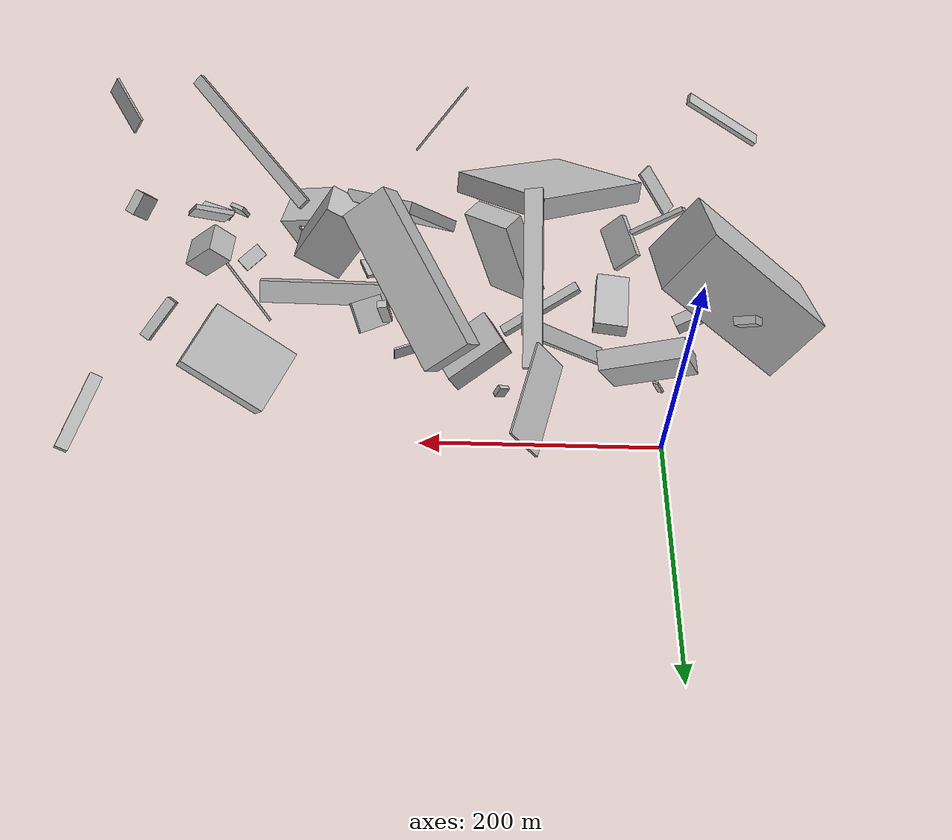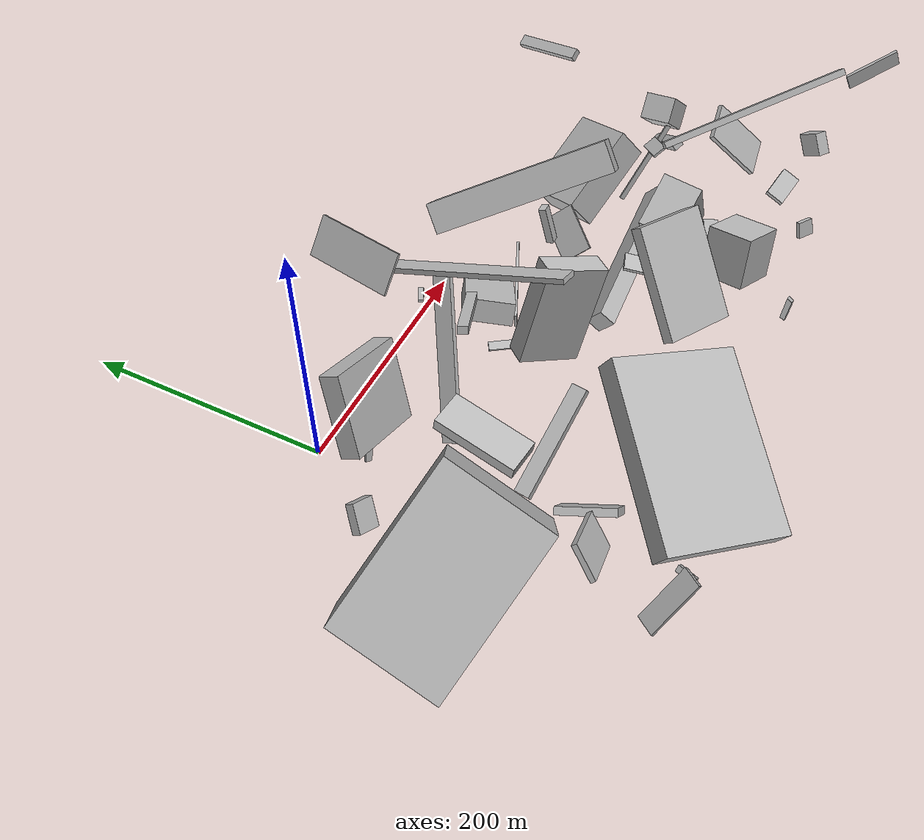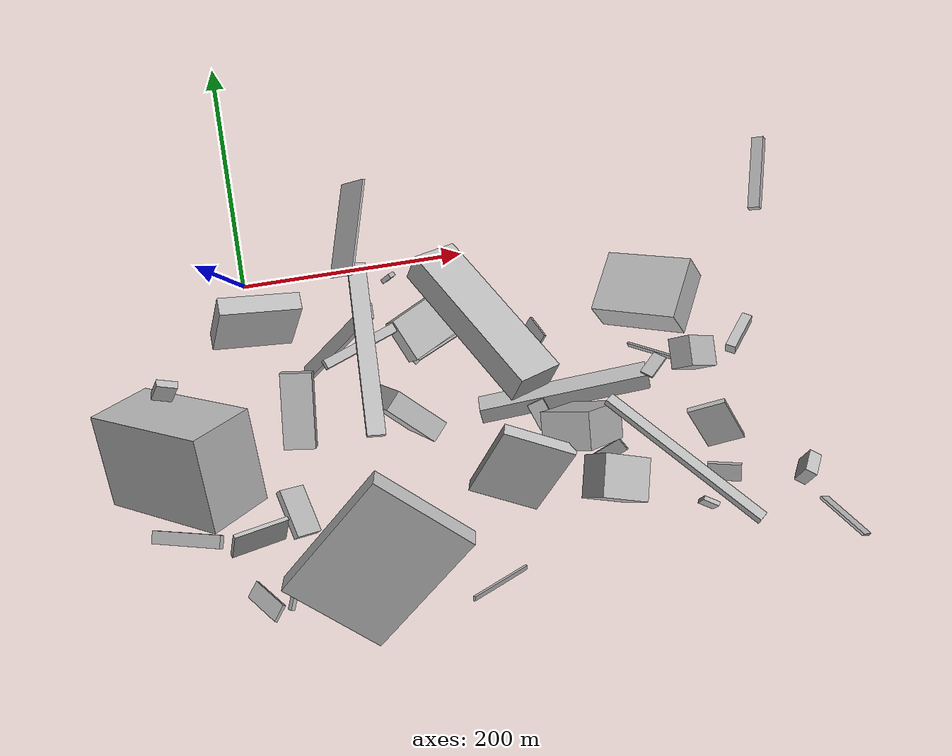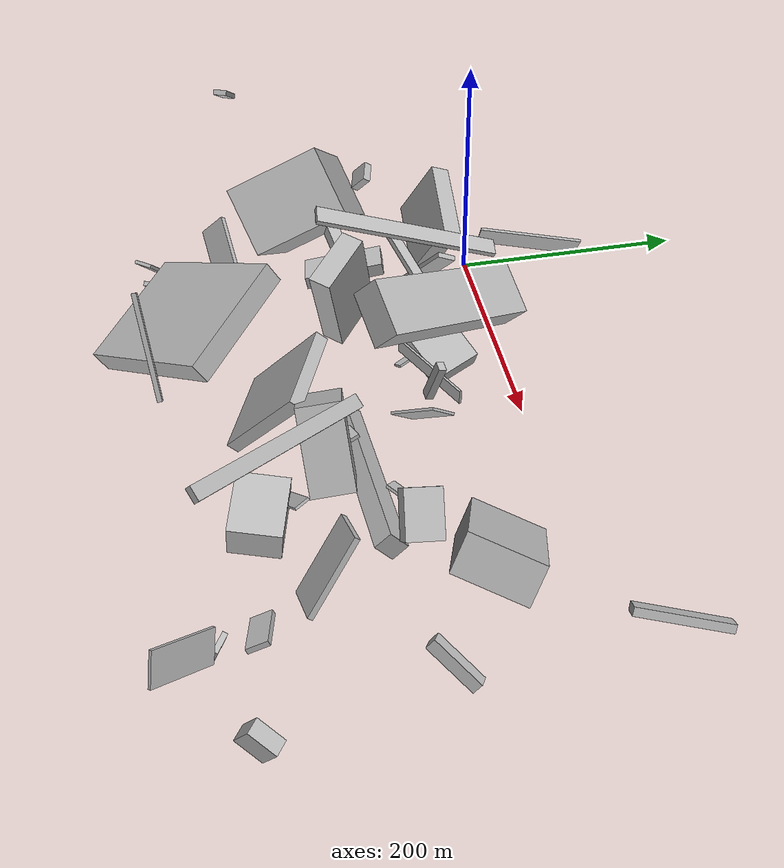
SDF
<sdf version="1.6">
 <world name="default">
  <model name="building_5">
   <static>0</static>
   <pose>102.16153685850966 -73.33031954508343 85.49092715441036 0.43963756912852114 0.028290553676220527 1.9585653919376407</pose>
   <link name="link">
    <gravity>0</gravity>
    <pose>0 0 3.0 0 0 0</pose>
    <collision name="collision"><geometry><box><size>8 70 6</size></box></geometry></collision>
    <visual name="visual">
     <cast_shadows>0</cast_shadows>
     <geometry><box><size>8 70 6</size></box></geometry>
     <material>
      <script>
       <uri>model://HANNAS_wall/materials/scripts</uri>
       <uri>model://HANNAS_wall/materials/textures</uri>
       <name>vrc/HANNAS_wall</name>
      </script>
     </material>
    </visual>
   </link>
  </model>
  <model name="building_7">
   <static>0</static>
   <pose>-19.292353680897072 -159.53463631597 79.0748970243742 2.529620187769243 -0.8031946919919525 -2.6791012494218247</pose>
   <link name="link">
    <gravity>0</gravity>
    <pose>0 0 65.0 0 0 0</pose>
    <collision name="collision"><geometry><box><size>63 87 130</size></box></geometry></collision>
    <visual name="visual">
     <cast_shadows>0</cast_shadows>
     <geometry><box><size>63 87 130</size></box></geometry>
     <material>
      <script>
       <uri>model://HANNAS_wall/materials/scripts</uri>
       <uri>model://HANNAS_wall/materials/textures</uri>
       <name>vrc/HANNAS_wall</name>
      </script>
     </material>
    </visual>
   </link>
  </model>
  <model name="building_10">
   <static>0</static>
   <pose>342.4192497505893 -201.32566527318764 151.62650027550703 2.263049715369004 0.2720535190863577 2.3129017693919165</pose>
   <link name="link">
    <gravity>0</gravity>
    <pose>0 0 5.0 0 0 0</pose>
    <collision name="collision"><geometry><box><size>150 5 10</size></box></geometry></collision>
    <visual name="visual">
     <cast_shadows>0</cast_shadows>
     <geometry><box><size>150 5 10</size></box></geometry>
     <material>
      <script>
       <uri>model://HANNAS_wall/materials/scripts</uri>
       <uri>model://HANNAS_wall/materials/textures</uri>
       <name>vrc/HANNAS_wall</name>
      </script>
     </material>
    </visual>
   </link>
  </model>
  <model name="building_12">
   <static>0</static>
   <pose>136.59331172341774 -214.9119745149422 77.0979892588978 -2.006695373787017 -0.3007476484331228 2.418565224094029</pose>
   <link name="link">
    <gravity>0</gravity>
    <pose>0 0 70.0 0 0 0</pose>
    <collision name="collision"><geometry><box><size>105 19 140</size></box></geometry></collision>
    <visual name="visual">
     <cast_shadows>0</cast_shadows>
     <geometry><box><size>105 19 140</size></box></geometry>
     <material>
      <script>
       <uri>model://HANNAS_wall/materials/scripts</uri>
       <uri>model://HANNAS_wall/materials/textures</uri>
       <name>vrc/HANNAS_wall</name>
      </script>
     </material>
    </visual>
   </link>
  </model>
  <model name="building_13">
   <static>0</static>
   <pose>383.7561574682753 -256.3732813748268 14.395179231091959 2.9109927980495627 1.1983539717498026 -2.3267588712815024</pose>
   <link name="link">
    <gravity>0</gravity>
    <pose>0 0 2.0 0 0 0</pose>
    <collision name="collision"><geometry><box><size>14 15 4</size></box></geometry></collision>
    <visual name="visual">
     <cast_shadows>0</cast_shadows>
     <geometry><box><size>14 15 4</size></box></geometry>
     <material>
      <script>
       <uri>model://HANNAS_wall/materials/scripts</uri>
       <uri>model://HANNAS_wall/materials/textures</uri>
       <name>vrc/HANNAS_wall</name>
      </script>
     </material>
    </visual>
   </link>
  </model>
  <model name="building_15">
   <static>0</static>
   <pose>110.54541779566739 -146.393947624754 149.61369321577354 2.5263513968655955 1.1439263130054422 -2.2353485971940237</pose>
   <link name="link">
    <gravity>0</gravity>
    <pose>0 0 75.0 0 0 0</pose>
    <collision name="collision"><geometry><box><size>4 15 150</size></box></geometry></collision>
    <visual name="visual">
     <cast_shadows>0</cast_shadows>
     <geometry><box><size>4 15 150</size></box></geometry>
     <material>
      <script>
       <uri>model://HANNAS_wall/materials/scripts</uri>
       <uri>model://HANNAS_wall/materials/textures</uri>
       <name>vrc/HANNAS_wall</name>
      </script>
     </material>
    </visual>
   </link>
  </model>
  <model name="building_16">
   <static>0</static>
   <pose>-6.408742971156322 -212.39102848943597 51.78708270991902 2.4960245818815125 0.5131706727605136 0.14620573823110036</pose>
   <link name="link">
    <gravity>0</gravity>
    <pose>0 0 14.0 0 0 0</pose>
    <collision name="collision"><geometry><box><size>51 4 28</size></box></geometry></collision>
    <visual name="visual">
     <cast_shadows>0</cast_shadows>
     <geometry><box><size>51 4 28</size></box></geometry>
     <material>
      <script>
       <uri>model://HANNAS_wall/materials/scripts</uri>
       <uri>model://HANNAS_wall/materials/textures</uri>
       <name>vrc/HANNAS_wall</name>
      </script>
     </material>
    </visual>
   </link>
  </model>
  <model name="building_18">
   <static>0</static>
   <pose>398.00636808115615 -219.3872669518585 43.05850663547555 -2.6220497054625818 -1.0770741973250373 -2.2253608676601924</pose>
   <link name="link">
    <gravity>0</gravity>
    <pose>0 0 8.0 0 0 0</pose>
    <collision name="collision"><geometry><box><size>4 29 16</size></box></geometry></collision>
    <visual name="visual">
     <cast_shadows>0</cast_shadows>
     <geometry><box><size>4 29 16</size></box></geometry>
     <material>
      <script>
       <uri>model://HANNAS_wall/materials/scripts</uri>
       <uri>model://HANNAS_wall/materials/textures</uri>
       <name>vrc/HANNAS_wall</name>
      </script>
     </material>
    </visual>
   </link>
  </model>
  <model name="building_20">
   <static>0</static>
   <pose>298.5751629795044 -236.48066500441684 42.72853106756688 -1.7176235595042786 0.3317109783652685 -0.28566057793081423</pose>
   <link name="link">
    <gravity>0</gravity>
    <pose>0 0 19.0 0 0 0</pose>
    <collision name="collision"><geometry><box><size>43 42 38</size></box></geometry></collision>
    <visual name="visual">
     <cast_shadows>0</cast_shadows>
     <geometry><box><size>43 42 38</size></box></geometry>
     <material>
      <script>
       <uri>model://HANNAS_wall/materials/scripts</uri>
       <uri>model://HANNAS_wall/materials/textures</uri>
       <name>vrc/HANNAS_wall</name>
      </script>
     </material>
    </visual>
   </link>
  </model>
  <model name="building_21">
   <static>0</static>
   <pose>222.2312464738095 -63.313495411220025 114.7806784540073 0.5618794824624866 0.818047730537645 -2.1668689970050625</pose>
   <link name="link">
    <gravity>0</gravity>
    <pose>0 0 20.5 0 0 0</pose>
    <collision name="collision"><geometry><box><size>24 141 41</size></box></geometry></collision>
    <visual name="visual">
     <cast_shadows>0</cast_shadows>
     <geometry><box><size>24 141 41</size></box></geometry>
     <material>
      <script>
       <uri>model://HANNAS_wall/materials/scripts</uri>
       <uri>model://HANNAS_wall/materials/textures</uri>
       <name>vrc/HANNAS_wall</name>
      </script>
     </material>
    </visual>
   </link>
  </model>
  <model name="building_25">
   <static>0</static>
   <pose>16.133647910264415 -30.01757500837323 63.80986110951927 -0.7192925158260081 1.0366642067744962 -2.2635756557562003</pose>
   <link name="link">
    <gravity>0</gravity>
    <pose>0 0 8.0 0 0 0</pose>
    <collision name="collision"><geometry><box><size>62 69 16</size></box></geometry></collision>
    <visual name="visual">
     <cast_shadows>0</cast_shadows>
     <geometry><box><size>62 69 16</size></box></geometry>
     <material>
      <script>
       <uri>model://HANNAS_wall/materials/scripts</uri>
       <uri>model://HANNAS_wall/materials/textures</uri>
       <name>vrc/HANNAS_wall</name>
      </script>
     </material>
    </visual>
   </link>
  </model>
  <model name="building_28">
   <static>0</static>
   <pose>270.5001070750448 -131.85133015586285 21.76227061102407 0.6835602619572649 -0.08956601987055944 0.05889522945132717</pose>
   <link name="link">
    <gravity>0</gravity>
    <pose>0 0 9.5 0 0 0</pose>
    <collision name="collision"><geometry><box><size>150 15 19</size></box></geometry></collision>
    <visual name="visual">
     <cast_shadows>0</cast_shadows>
     <geometry><box><size>150 15 19</size></box></geometry>
     <material>
      <script>
       <uri>model://HANNAS_wall/materials/scripts</uri>
       <uri>model://HANNAS_wall/materials/textures</uri>
       <name>vrc/HANNAS_wall</name>
      </script>
     </material>
    </visual>
   </link>
  </model>
  <model name="building_29">
   <static>0</static>
   <pose>8.46304671728738 -283.9750349331316 24.624359356678163 0.02753251506465785 0.8358519940491919 2.8130281463200957</pose>
   <link name="link">
    <gravity>0</gravity>
    <pose>0 0 2.0 0 0 0</pose>
    <collision name="collision"><geometry><box><size>5 15 4</size></box></geometry></collision>
    <visual name="visual">
     <cast_shadows>0</cast_shadows>
     <geometry><box><size>5 15 4</size></box></geometry>
     <material>
      <script>
       <uri>model://HANNAS_wall/materials/scripts</uri>
       <uri>model://HANNAS_wall/materials/textures</uri>
       <name>vrc/HANNAS_wall</name>
      </script>
     </material>
    </visual>
   </link>
  </model>
  <model name="building_30">
   <static>0</static>
   <pose>83.60708190739513 -67.0180814187151 53.94260650162122 -0.9491275082231776 0.41674464875791917 1.595987948968332</pose>
   <link name="link">
    <gravity>0</gravity>
    <pose>0 0 2.0 0 0 0</pose>
    <collision name="collision"><geometry><box><size>15 124 4</size></box></geometry></collision>
    <visual name="visual">
     <cast_shadows>0</cast_shadows>
     <geometry><box><size>15 124 4</size></box></geometry>
     <material>
      <script>
       <uri>model://HANNAS_wall/materials/scripts</uri>
       <uri>model://HANNAS_wall/materials/textures</uri>
       <name>vrc/HANNAS_wall</name>
      </script>
     </material>
    </visual>
   </link>
  </model>
  <model name="building_31">
   <static>0</static>
   <pose>375.2088240580995 -107.18686953541072 98.68116490143636 -1.4377472693771352 -0.7408997205310374 3.0047334513113664</pose>
   <link name="link">
    <gravity>0</gravity>
    <pose>0 0 12.5 0 0 0</pose>
    <collision name="collision"><geometry><box><size>33 21 25</size></box></geometry></collision>
    <visual name="visual">
     <cast_shadows>0</cast_shadows>
     <geometry><box><size>33 21 25</size></box></geometry>
     <material>
      <script>
       <uri>model://HANNAS_wall/materials/scripts</uri>
       <uri>model://HANNAS_wall/materials/textures</uri>
       <name>vrc/HANNAS_wall</name>
      </script>
     </material>
    </visual>
   </link>
  </model>
  <model name="building_32">
   <static>0</static>
   <pose>432.66303468823475 -106.60681756304183 26.013599985143813 2.540184309410349 -0.3957626245882051 -0.4992928094336515</pose>
   <link name="link">
    <gravity>0</gravity>
    <pose>0 0 4.5 0 0 0</pose>
    <collision name="collision"><geometry><box><size>9 41 9</size></box></geometry></collision>
    <visual name="visual">
     <cast_shadows>0</cast_shadows>
     <geometry><box><size>9 41 9</size></box></geometry>
     <material>
      <script>
       <uri>model://HANNAS_wall/materials/scripts</uri>
       <uri>model://HANNAS_wall/materials/textures</uri>
       <name>vrc/HANNAS_wall</name>
      </script>
     </material>
    </visual>
   </link>
  </model>
  <model name="building_34">
   <static>0</static>
   <pose>373.604648558367 -183.39805720555628 75.59994462393223 1.118622577851524 0.6275451518029685 1.4325319701213288</pose>
   <link name="link">
    <gravity>0</gravity>
    <pose>0 0 16.0 0 0 0</pose>
    <collision name="collision"><geometry><box><size>4 58 32</size></box></geometry></collision>
    <visual name="visual">
     <cast_shadows>0</cast_shadows>
     <geometry><box><size>4 58 32</size></box></geometry>
     <material>
      <script>
       <uri>model://HANNAS_wall/materials/scripts</uri>
       <uri>model://HANNAS_wall/materials/textures</uri>
       <name>vrc/HANNAS_wall</name>
      </script>
     </material>
    </visual>
   </link>
  </model>
  <model name="building_35">
   <static>0</static>
   <pose>222.6848987107923 -190.59820941374895 72.69427242414655 0.8786647316230358 0.1771060080772892 -0.4411557567512164</pose>
   <link name="link">
    <gravity>0</gravity>
    <pose>0 0 5.0 0 0 0</pose>
    <collision name="collision"><geometry><box><size>63 90 10</size></box></geometry></collision>
    <visual name="visual">
     <cast_shadows>0</cast_shadows>
     <geometry><box><size>63 90 10</size></box></geometry>
     <material>
      <script>
       <uri>model://HANNAS_wall/materials/scripts</uri>
       <uri>model://HANNAS_wall/materials/textures</uri>
       <name>vrc/HANNAS_wall</name>
      </script>
     </material>
    </visual>
   </link>
  </model>
  <model name="building_36">
   <static>0</static>
   <pose>180.0877417171482 -50.48538051370767 35.11549532576675 -0.3464008447723418 1.1182631596506247 -3.0396101261671364</pose>
   <link name="link">
    <gravity>0</gravity>
    <pose>0 0 27.0 0 0 0</pose>
    <collision name="collision"><geometry><box><size>18 39 54</size></box></geometry></collision>
    <visual name="visual">
     <cast_shadows>0</cast_shadows>
     <geometry><box><size>18 39 54</size></box></geometry>
     <material>
      <script>
       <uri>model://HANNAS_wall/materials/scripts</uri>
       <uri>model://HANNAS_wall/materials/textures</uri>
       <name>vrc/HANNAS_wall</name>
      </script>
     </material>
    </visual>
   </link>
  </model>
  <model name="building_39">
   <static>0</static>
   <pose>39.15119712863333 -117.08487325960742 38.30635457615258 -0.1688851281676563 0.034630181616372824 3.0246799527375265</pose>
   <link name="link">
    <gravity>0</gravity>
    <pose>0 0 5.5 0 0 0</pose>
    <collision name="collision"><geometry><box><size>28 67 11</size></box></geometry></collision>
    <visual name="visual">
     <cast_shadows>0</cast_shadows>
     <geometry><box><size>28 67 11</size></box></geometry>
     <material>
      <script>
       <uri>model://HANNAS_wall/materials/scripts</uri>
       <uri>model://HANNAS_wall/materials/textures</uri>
       <name>vrc/HANNAS_wall</name>
      </script>
     </material>
    </visual>
   </link>
  </model>
  <model name="building_43">
   <static>0</static>
   <pose>135.57576391530452 -15.15427418070478 49.425191932415196 0.5726195562321963 0.03148023398696535 -1.0964533925057276</pose>
   <link name="link">
    <gravity>0</gravity>
    <pose>0 0 4.5 0 0 0</pose>
    <collision name="collision"><geometry><box><size>4 10 9</size></box></geometry></collision>
    <visual name="visual">
     <cast_shadows>0</cast_shadows>
     <geometry><box><size>4 10 9</size></box></geometry>
     <material>
      <script>
       <uri>model://HANNAS_wall/materials/scripts</uri>
       <uri>model://HANNAS_wall/materials/textures</uri>
       <name>vrc/HANNAS_wall</name>
      </script>
     </material>
    </visual>
   </link>
  </model>
  <model name="building_47">
   <static>0</static>
   <pose>229.50044307847037 -76.53741283383472 73.02694774364109 0.3373429492674899 -1.258652256260235 1.3234071568108752</pose>
   <link name="link">
    <gravity>0</gravity>
    <pose>0 0 3.0 0 0 0</pose>
    <collision name="collision"><geometry><box><size>31 8 6</size></box></geometry></collision>
    <visual name="visual">
     <cast_shadows>0</cast_shadows>
     <geometry><box><size>31 8 6</size></box></geometry>
     <material>
      <script>
       <uri>model://HANNAS_wall/materials/scripts</uri>
       <uri>model://HANNAS_wall/materials/textures</uri>
       <name>vrc/HANNAS_wall</name>
      </script>
     </material>
    </visual>
   </link>
  </model>
  <model name="building_52">
   <static>0</static>
   <pose>387.75948822155715 -71.0278455915556 48.98095842986517 2.1544944093955025 -0.29113094512802007 -2.0586597799541124</pose>
   <link name="link">
    <gravity>0</gravity>
    <pose>0 0 39.0 0 0 0</pose>
    <collision name="collision"><geometry><box><size>57 31 78</size></box></geometry></collision>
    <visual name="visual">
     <cast_shadows>0</cast_shadows>
     <geometry><box><size>57 31 78</size></box></geometry>
     <material>
      <script>
       <uri>model://HANNAS_wall/materials/scripts</uri>
       <uri>model://HANNAS_wall/materials/textures</uri>
       <name>vrc/HANNAS_wall</name>
      </script>
     </material>
    </visual>
   </link>
  </model>
  <model name="building_53">
   <static>0</static>
   <pose>-30.615107256455346 -111.1053305557591 26.365629557552403 -1.4343046688771972 1.1343152025875816 -2.7579143339419243</pose>
   <link name="link">
    <gravity>0</gravity>
    <pose>0 0 5.5 0 0 0</pose>
    <collision name="collision"><geometry><box><size>14 22 11</size></box></geometry></collision>
    <visual name="visual">
     <cast_shadows>0</cast_shadows>
     <geometry><box><size>14 22 11</size></box></geometry>
     <material>
      <script>
       <uri>model://HANNAS_wall/materials/scripts</uri>
       <uri>model://HANNAS_wall/materials/textures</uri>
       <name>vrc/HANNAS_wall</name>
      </script>
     </material>
    </visual>
   </link>
  </model>
  <model name="building_54">
   <static>0</static>
   <pose>32.80802923430567 -206.0697666967718 18.46310026789849 0.7083444458196912 -0.20689050918590926 -1.300667539002597</pose>
   <link name="link">
    <gravity>0</gravity>
    <pose>0 0 13.5 0 0 0</pose>
    <collision name="collision"><geometry><box><size>44 6 27</size></box></geometry></collision>
    <visual name="visual">
     <cast_shadows>0</cast_shadows>
     <geometry><box><size>44 6 27</size></box></geometry>
     <material>
      <script>
       <uri>model://HANNAS_wall/materials/scripts</uri>
       <uri>model://HANNAS_wall/materials/textures</uri>
       <name>vrc/HANNAS_wall</name>
      </script>
     </material>
    </visual>
   </link>
  </model>
  <model name="building_55">
   <static>0</static>
   <pose>474.6975664023172 -268.3021637167077 119.32472625266547 0.3344494862422076 -0.4852287628215465 -0.9355577805300332</pose>
   <link name="link">
    <gravity>0</gravity>
    <pose>0 0 10.5 0 0 0</pose>
    <collision name="collision"><geometry><box><size>44 2 21</size></box></geometry></collision>
    <visual name="visual">
     <cast_shadows>0</cast_shadows>
     <geometry><box><size>44 2 21</size></box></geometry>
     <material>
      <script>
       <uri>model://HANNAS_wall/materials/scripts</uri>
       <uri>model://HANNAS_wall/materials/textures</uri>
       <name>vrc/HANNAS_wall</name>
      </script>
     </material>
    </visual>
   </link>
  </model>
  <model name="building_56">
   <static>0</static>
   <pose>251.58850090642977 -164.69404975623837 42.567885699971974 0.7787172619898691 -1.2747116815745476 -2.019587404670629</pose>
   <link name="link">
    <gravity>0</gravity>
    <pose>0 0 12.5 0 0 0</pose>
    <collision name="collision"><geometry><box><size>3 15 25</size></box></geometry></collision>
    <visual name="visual">
     <cast_shadows>0</cast_shadows>
     <geometry><box><size>3 15 25</size></box></geometry>
     <material>
      <script>
       <uri>model://HANNAS_wall/materials/scripts</uri>
       <uri>model://HANNAS_wall/materials/textures</uri>
       <name>vrc/HANNAS_wall</name>
      </script>
     </material>
    </visual>
   </link>
  </model>
  <model name="building_58">
   <static>0</static>
   <pose>354.2842484705566 -117.84866303913363 61.11424316402722 -0.5023823135543874 -0.9427570056291426 -0.5336748699847287</pose>
   <link name="link">
    <gravity>0</gravity>
    <pose>0 0 2.0 0 0 0</pose>
    <collision name="collision"><geometry><box><size>80 2 4</size></box></geometry></collision>
    <visual name="visual">
     <cast_shadows>0</cast_shadows>
     <geometry><box><size>80 2 4</size></box></geometry>
     <material>
      <script>
       <uri>model://HANNAS_wall/materials/scripts</uri>
       <uri>model://HANNAS_wall/materials/textures</uri>
       <name>vrc/HANNAS_wall</name>
      </script>
     </material>
    </visual>
   </link>
  </model>
  <model name="building_60">
   <static>0</static>
   <pose>347.3522587971952 -128.40055962479616 89.12774627466317 2.129492012189173 -0.23047371427240854 -2.3761858249648866</pose>
   <link name="link">
    <gravity>0</gravity>
    <pose>0 0 6.0 0 0 0</pose>
    <collision name="collision"><geometry><box><size>21 2 12</size></box></geometry></collision>
    <visual name="visual">
     <cast_shadows>0</cast_shadows>
     <geometry><box><size>21 2 12</size></box></geometry>
     <material>
      <script>
       <uri>model://HANNAS_wall/materials/scripts</uri>
       <uri>model://HANNAS_wall/materials/textures</uri>
       <name>vrc/HANNAS_wall</name>
      </script>
     </material>
    </visual>
   </link>
  </model>
  <model name="building_61">
   <static>0</static>
   <pose>290.3157015548867 -199.23046981367713 39.88139119800148 0.2692429993631912 0.9772525907176486 0.771180447228721</pose>
   <link name="link">
    <gravity>0</gravity>
    <pose>0 0 14.5 0 0 0</pose>
    <collision name="collision"><geometry><box><size>2 12 29</size></box></geometry></collision>
    <visual name="visual">
     <cast_shadows>0</cast_shadows>
     <geometry><box><size>2 12 29</size></box></geometry>
     <material>
      <script>
       <uri>model://HANNAS_wall/materials/scripts</uri>
       <uri>model://HANNAS_wall/materials/textures</uri>
       <name>vrc/HANNAS_wall</name>
      </script>
     </material>
    </visual>
   </link>
  </model>
  <model name="building_62">
   <static>0</static>
   <pose>185.80062059893464 -73.74310938150516 38.583883629937844 -0.012523522983091112 -0.04005268107728008 0.422112867531175</pose>
   <link name="link">
    <gravity>0</gravity>
    <pose>0 0 6.0 0 0 0</pose>
    <collision name="collision"><geometry><box><size>80 2 12</size></box></geometry></collision>
    <visual name="visual">
     <cast_shadows>0</cast_shadows>
     <geometry><box><size>80 2 12</size></box></geometry>
     <material>
      <script>
       <uri>model://HANNAS_wall/materials/scripts</uri>
       <uri>model://HANNAS_wall/materials/textures</uri>
       <name>vrc/HANNAS_wall</name>
      </script>
     </material>
    </visual>
   </link>
  </model>
  <model name="building_63">
   <static>0</static>
   <pose>-76.96389973730878 -81.93049657412297 68.79269015353427 2.2261159083223694 -0.8161000560854915 0.796231657107616</pose>
   <link name="link">
    <gravity>0</gravity>
    <pose>0 0 9.0 0 0 0</pose>
    <collision name="collision"><geometry><box><size>21 7 18</size></box></geometry></collision>
    <visual name="visual">
     <cast_shadows>0</cast_shadows>
     <geometry><box><size>21 7 18</size></box></geometry>
     <material>
      <script>
       <uri>model://HANNAS_wall/materials/scripts</uri>
       <uri>model://HANNAS_wall/materials/textures</uri>
       <name>vrc/HANNAS_wall</name>
      </script>
     </material>
    </visual>
   </link>
  </model>
  <model name="building_64">
   <static>0</static>
   <pose>465.2125945651135 -241.86425184160964 44.10075574871511 2.1805013759867364 -0.03687377049902755 2.517500470027549</pose>
   <link name="link">
    <gravity>0</gravity>
    <pose>0 0 11.0 0 0 0</pose>
    <collision name="collision"><geometry><box><size>11 20 22</size></box></geometry></collision>
    <visual name="visual">
     <cast_shadows>0</cast_shadows>
     <geometry><box><size>11 20 22</size></box></geometry>
     <material>
      <script>
       <uri>model://HANNAS_wall/materials/scripts</uri>
       <uri>model://HANNAS_wall/materials/textures</uri>
       <name>vrc/HANNAS_wall</name>
      </script>
     </material>
    </visual>
   </link>
  </model>
  <model name="building_66">
   <static>0</static>
   <pose>294.6829678066903 -164.8281269502006 48.018629588651095 0.5498904026762401 0.09848103352268717 -1.6390565239015753</pose>
   <link name="link">
    <gravity>0</gravity>
    <pose>0 0 32.0 0 0 0</pose>
    <collision name="collision"><geometry><box><size>32 44 64</size></box></geometry></collision>
    <visual name="visual">
     <cast_shadows>0</cast_shadows>
     <geometry><box><size>32 44 64</size></box></geometry>
     <material>
      <script>
       <uri>model://HANNAS_wall/materials/scripts</uri>
       <uri>model://HANNAS_wall/materials/textures</uri>
       <name>vrc/HANNAS_wall</name>
      </script>
     </material>
    </visual>
   </link>
  </model>
  <model name="building_67">
   <static>0</static>
   <pose>-11.519401120614653 -273.5870732173701 24.65044284605673 1.551747969132266 0.7497686900063961 -0.645774278491098</pose>
   <link name="link">
    <gravity>0</gravity>
    <pose>0 0 8.0 0 0 0</pose>
    <collision name="collision"><geometry><box><size>3 48 16</size></box></geometry></collision>
    <visual name="visual">
     <cast_shadows>0</cast_shadows>
     <geometry><box><size>3 48 16</size></box></geometry>
     <material>
      <script>
       <uri>model://HANNAS_wall/materials/scripts</uri>
       <uri>model://HANNAS_wall/materials/textures</uri>
       <name>vrc/HANNAS_wall</name>
      </script>
     </material>
    </visual>
   </link>
  </model>
  <model name="building_71">
   <static>0</static>
   <pose>147.8200351586927 -91.86219825808564 19.295289630463238 -1.5625242101081867 -0.33584389234644135 0.5945165249212004</pose>
   <link name="link">
    <gravity>0</gravity>
    <pose>0 0 11.0 0 0 0</pose>
    <collision name="collision"><geometry><box><size>7 2 22</size></box></geometry></collision>
    <visual name="visual">
     <cast_shadows>0</cast_shadows>
     <geometry><box><size>7 2 22</size></box></geometry>
     <material>
      <script>
       <uri>model://HANNAS_wall/materials/scripts</uri>
       <uri>model://HANNAS_wall/materials/textures</uri>
       <name>vrc/HANNAS_wall</name>
      </script>
     </material>
    </visual>
   </link>
  </model>
  <model name="building_72">
   <static>0</static>
   <pose>-1.0441147395055568 -44.78400941659332 18.298050992241237 0.31695894424275844 -0.31850567384597367 2.542504371246139</pose>
   <link name="link">
    <gravity>0</gravity>
    <pose>0 0 8.0 0 0 0</pose>
    <collision name="collision"><geometry><box><size>5 2 16</size></box></geometry></collision>
    <visual name="visual">
     <cast_shadows>0</cast_shadows>
     <geometry><box><size>5 2 16</size></box></geometry>
     <material>
      <script>
       <uri>model://HANNAS_wall/materials/scripts</uri>
       <uri>model://HANNAS_wall/materials/textures</uri>
       <name>vrc/HANNAS_wall</name>
      </script>
     </material>
    </visual>
   </link>
  </model>
  <model name="building_76">
   <static>0</static>
   <pose>98.33246985112282 -14.03938431063874 104.38814889220609 1.7424455444964897 0.9093598839536685 3.01970548736526</pose>
   <link name="link">
    <gravity>0</gravity>
    <pose>0 0 40.0 0 0 0</pose>
    <collision name="collision"><geometry><box><size>33 2 80</size></box></geometry></collision>
    <visual name="visual">
     <cast_shadows>0</cast_shadows>
     <geometry><box><size>33 2 80</size></box></geometry>
     <material>
      <script>
       <uri>model://HANNAS_wall/materials/scripts</uri>
       <uri>model://HANNAS_wall/materials/textures</uri>
       <name>vrc/HANNAS_wall</name>
      </script>
     </material>
    </visual>
   </link>
  </model>
  <model name="building_78">
   <static>0</static>
   <pose>233.45056035072616 -104.80637276123696 47.144785663019334 -0.8905643027539779 -0.6937554889761063 -1.1394949024776002</pose>
   <link name="link">
    <gravity>0</gravity>
    <pose>0 0 19.5 0 0 0</pose>
    <collision name="collision"><geometry><box><size>26 2 39</size></box></geometry></collision>
    <visual name="visual">
     <cast_shadows>0</cast_shadows>
     <geometry><box><size>26 2 39</size></box></geometry>
     <material>
      <script>
       <uri>model://HANNAS_wall/materials/scripts</uri>
       <uri>model://HANNAS_wall/materials/textures</uri>
       <name>vrc/HANNAS_wall</name>
      </script>
     </material>
    </visual>
   </link>
  </model>
  <model name="building_79">
   <static>0</static>
   <pose>450.57307714037273 -7.193228067609249 74.6985292771789 1.7992200551968704 0.5508227947758172 2.9982402036593814</pose>
   <link name="link">
    <gravity>0</gravity>
    <pose>0 0 32.0 0 0 0</pose>
    <collision name="collision"><geometry><box><size>10 6 64</size></box></geometry></collision>
    <visual name="visual">
     <cast_shadows>0</cast_shadows>
     <geometry><box><size>10 6 64</size></box></geometry>
     <material>
      <script>
       <uri>model://HANNAS_wall/materials/scripts</uri>
       <uri>model://HANNAS_wall/materials/textures</uri>
       <name>vrc/HANNAS_wall</name>
      </script>
     </material>
    </visual>
   </link>
  </model>
  <model name="building_82">
   <static>0</static>
   <pose>190.36604246250107 -279.0734671894618 107.49333720148218 1.915970786313218 -0.5246405905700672 -0.45580067561828796</pose>
   <link name="link">
    <gravity>0</gravity>
    <pose>0 0 2.0 0 0 0</pose>
    <collision name="collision"><geometry><box><size>2 80 4</size></box></geometry></collision>
    <visual name="visual">
     <cast_shadows>0</cast_shadows>
     <geometry><box><size>2 80 4</size></box></geometry>
     <material>
      <script>
       <uri>model://HANNAS_wall/materials/scripts</uri>
       <uri>model://HANNAS_wall/materials/textures</uri>
       <name>vrc/HANNAS_wall</name>
      </script>
     </material>
    </visual>
   </link>
  </model>
  <model name="building_85">
   <static>0</static>
   <pose>-39.44908868560498 -196.19519896587903 177.27641393804768 -1.4490016476092102 0.5332363160771868 3.0045915484957746</pose>
   <link name="link">
    <gravity>0</gravity>
    <pose>0 0 5.0 0 0 0</pose>
    <collision name="collision"><geometry><box><size>69 4 10</size></box></geometry></collision>
    <visual name="visual">
     <cast_shadows>0</cast_shadows>
     <geometry><box><size>69 4 10</size></box></geometry>
     <material>
      <script>
       <uri>model://HANNAS_wall/materials/scripts</uri>
       <uri>model://HANNAS_wall/materials/textures</uri>
       <name>vrc/HANNAS_wall</name>
      </script>
     </material>
    </visual>
   </link>
  </model>
  <model name="building_86">
   <static>0</static>
   <pose>120.04384018549106 -126.47375592615039 54.09260423159641 0.10278228033596294 -0.3099514249239825 2.395387990220479</pose>
   <link name="link">
    <gravity>0</gravity>
    <pose>0 0 40.0 0 0 0</pose>
    <collision name="collision"><geometry><box><size>48 18 80</size></box></geometry></collision>
    <visual name="visual">
     <cast_shadows>0</cast_shadows>
     <geometry><box><size>48 18 80</size></box></geometry>
     <material>
      <script>
       <uri>model://HANNAS_wall/materials/scripts</uri>
       <uri>model://HANNAS_wall/materials/textures</uri>
       <name>vrc/HANNAS_wall</name>
      </script>
     </material>
    </visual>
   </link>
  </model>
 </world>
</sdf>
